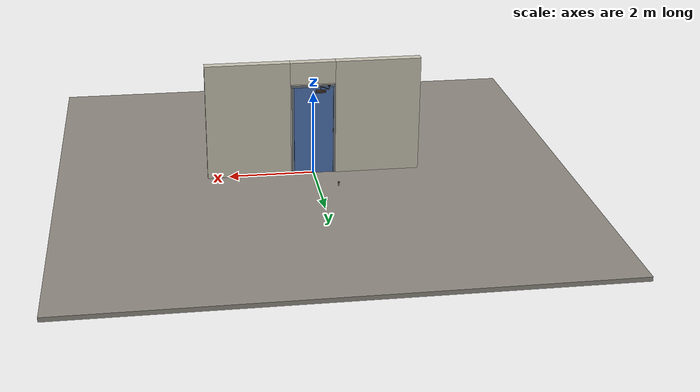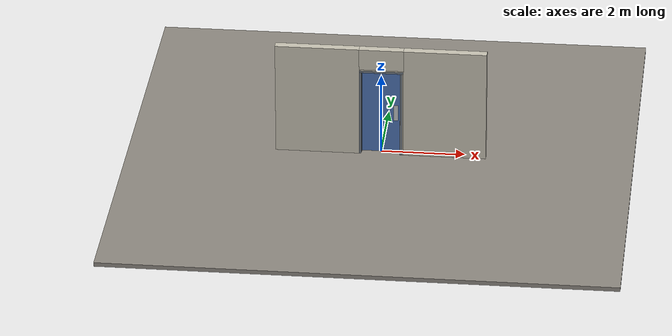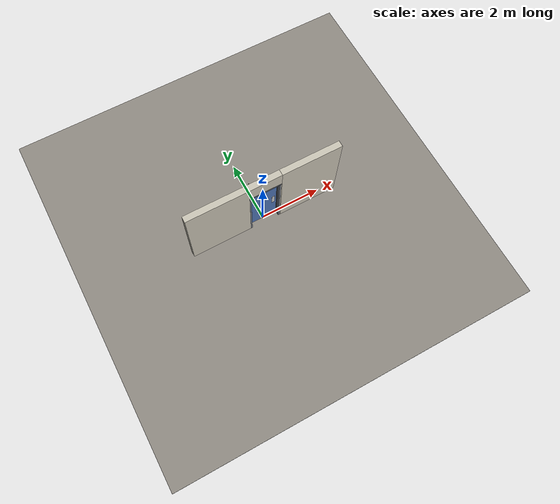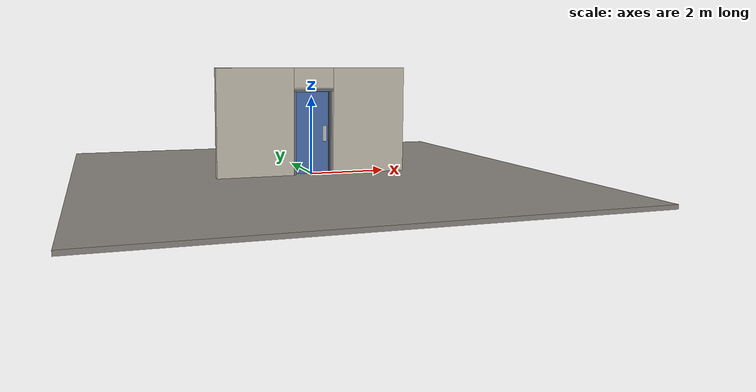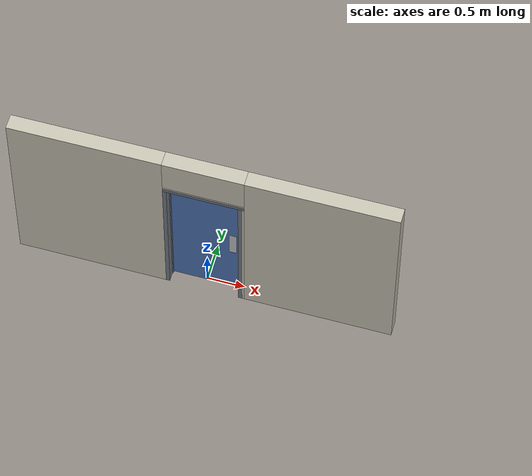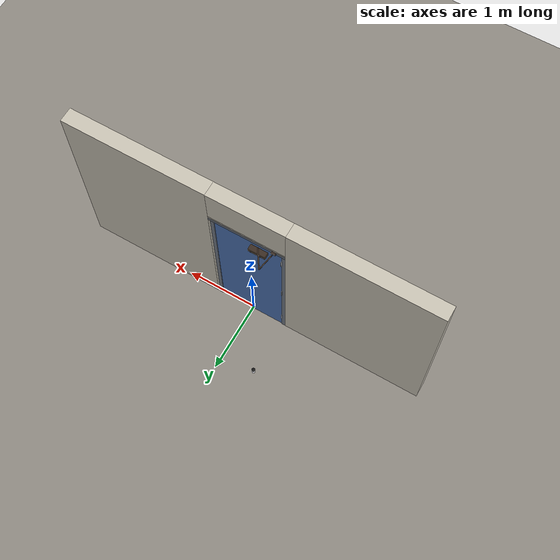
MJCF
<?xml version="1.0" ?>
<mujoco model="db0245_swing_single_full">
  <compiler angle="radian" meshdir="../../hardware" texturedir="../../textures" autolimits="true" inertiafromgeom="false"/>
  <option timestep="0.002" integrator="implicitfast" cone="elliptic" impratio="10" noslip_iterations="3">
    <flag multiccd="enable"/>
  </option>
  <size memory="16M"/>
  <default>
    <geom condim="4" solref="0.005 1" solimp="0.95 0.99 0.001"/>
    <joint solreflimit="0.005 1" solimplimit="0.95 0.99 0.001"/>
    <tendon solreflimit="0.005 1"/>
    <equality solref="0.002 1"/>
  </default>
  <visual>
    <headlight ambient="0.4 0.4 0.4" diffuse="0.7 0.7 0.7" specular="0.2 0.2 0.2"/>
    <quality shadowsize="4096"/>
    <map znear="0.01" zfar="60"/>
  </visual>
  <asset>
    <mesh name="closer_body_b226fdb10b" file="closer_body_b226fdb10b.obj"/>
    <mesh name="hinge_e22b26c0c1" file="hinge_e22b26c0c1.obj"/>
    <mesh name="hinge_jamb_e1d088f8dc" file="hinge_jamb_e1d088f8dc.obj"/>
    <material name="mat_floor" rgba="0.55 0.53 0.5 1" specular="0.2" shininess="0.15" reflectance="0"/>
    <material name="mat_wall" rgba="0.78 0.76 0.7 1" specular="0.2" shininess="0.1" reflectance="0"/>
    <material name="mat_leaf" rgba="0.3 0.45 0.7 1" specular="0.23" shininess="0.43" reflectance="0.02"/>
    <material name="mat_hinge" rgba="0.65 0.66 0.68 1" specular="0.74" shininess="0.5" reflectance="0.36"/>
    <material name="mat_op_stainless" rgba="0.75 0.76 0.77 1" specular="0.8" shininess="0.65" reflectance="0.4"/>
    <material name="mat_frame" rgba="0.45 0.48 0.52 1" specular="0.32" shininess="0.6" reflectance="0.08"/>
    <material name="mat_seal" rgba="0.1 0.1 0.1 1" specular="0.2" shininess="0.1" reflectance="0"/>
    <material name="mat_closer" rgba="0.22 0.17 0.13 1" specular="0.8" shininess="0.6" reflectance="0.4"/>
    <material name="mat_bumper_stop" rgba="0.08 0.08 0.08 1" specular="0.2" shininess="0.1" reflectance="0"/>
    <material name="mat_stop_base" rgba="0.9 0.9 0.92 1" specular="0.8" shininess="0.9" reflectance="0.4"/>
    <texture name="skybox" type="skybox" builtin="gradient" rgb1="0.6 0.7 0.85" rgb2="0.9 0.92 0.95" width="256" height="256"/>
  </asset>
  <worldbody>
    <light name="sun" pos="1.5 -2.5 4" dir="-0.3 0.5 -0.8" directional="true" diffuse="0.8 0.8 0.8" specular="0.3 0.3 0.3" castshadow="true"/>
    <light name="fill" pos="-1.5 2.5 3" dir="0.3 -0.5 -0.7" directional="true" diffuse="0.35 0.35 0.4" castshadow="false"/>
    <camera name="robot_view" pos="0 -2.708813 1.812087" xyaxes="1 0 0 0 0.26963 0.962964" fovy="52"/>
    <camera name="far_view" pos="0 2.566812 1.812087" xyaxes="-1 0 0 0 -0.26963 0.962964" fovy="52"/>
    <camera name="iso" pos="2.004737 -2.286763 2.234138" xyaxes="0.741536 0.670913 0 -0.242917 0.268487 0.932151" fovy="46"/>
    <camera name="detail_handle" pos="0.5335 -0.871 1.32" xyaxes="0.97561 0.219512 0 -0.070934 0.315262 0.94635" fovy="38"/>
    <geom name="floor" type="box" size="6 6 0.05" pos="0 0 -0.05" material="mat_floor" group="0" contype="1" conaffinity="1" friction="0.8 0.005 0.0001" density="2400"/>
    <geom name="wall_left" type="box" size="0.99475 0.1 1.3735" pos="-1.50525 -0.071 1.3735" material="mat_wall" group="0" contype="1" conaffinity="1" friction="0.6 0.005 0.0001" density="800"/>
    <geom name="wall_right" type="box" size="0.97975 0.1 1.3735" pos="1.52025 -0.071 1.3735" material="mat_wall" group="0" contype="1" conaffinity="1" friction="0.6 0.005 0.0001" density="800"/>
    <geom name="wall_header" type="box" size="0.5255 0.1 0.26" pos="0.015 -0.071 2.487" material="mat_wall" group="0" contype="1" conaffinity="1" friction="0.6 0.005 0.0001" density="800"/>
    <geom name="hinge_0_jamb" type="mesh" mesh="hinge_jamb_e1d088f8dc" pos="-0.4575 0.029 0.259" quat="0 1 0 0" material="mat_hinge" group="1" contype="0" conaffinity="0" density="7850"/>
    <geom name="hinge_1_jamb" type="mesh" mesh="hinge_jamb_e1d088f8dc" pos="-0.4575 0.029 1.076" quat="0 1 0 0" material="mat_hinge" group="1" contype="0" conaffinity="0" density="7850"/>
    <geom name="hinge_2_jamb" type="mesh" mesh="hinge_jamb_e1d088f8dc" pos="-0.4575 0.029 1.963" quat="0 1 0 0" material="mat_hinge" group="1" contype="0" conaffinity="0" density="7850"/>
    <geom name="jamb_hinge" type="box" size="0.025 0.1 1.0735" pos="-0.4855 -0.071 1.0735" material="mat_frame" group="0" contype="1" conaffinity="1" friction="0.6 0.005 0.0001" density="300"/>
    <geom name="jamb_strike" type="box" size="0.025 0.1 1.0735" pos="0.4855 -0.071 1.0735" material="mat_frame" group="0" contype="1" conaffinity="1" friction="0.6 0.005 0.0001" density="300"/>
    <geom name="stud_strike" type="box" size="0.015 0.1 1.0735" pos="0.5255 -0.071 1.0735" material="mat_wall" group="0" contype="1" conaffinity="1" friction="0.6 0.005 0.0001" density="500"/>
    <geom name="jamb_head" type="box" size="0.5255 0.1 0.025" pos="0.015 -0.071 2.172" material="mat_frame" group="0" contype="1" conaffinity="1" friction="0.6 0.005 0.0001" density="300"/>
    <geom name="head_stud" type="box" size="0.5255 0.1 0.015" pos="0.015 -0.071 2.212" material="mat_wall" group="0" contype="1" conaffinity="1" friction="0.6 0.005 0.0001" density="500"/>
    <geom name="stop_hinge" type="box" size="0.0055 0.016 1.0735" pos="-0.455 -0.0385 1.0735" material="mat_frame" group="0" contype="1" conaffinity="1" friction="0.6 0.005 0.0001" density="300"/>
    <geom name="stop_strike" type="box" size="0.0055 0.016 1.0735" pos="0.455 -0.0385 1.0735" material="mat_frame" group="0" contype="1" conaffinity="1" friction="0.6 0.005 0.0001" density="300"/>
    <geom name="stop_head" type="box" size="0.4605 0.016 0.0055" pos="0 -0.0385 2.1415" material="mat_frame" group="0" contype="1" conaffinity="1" friction="0.6 0.005 0.0001" density="300"/>
    <geom name="seal_hinge" type="box" size="0.004 0.004 1.0735" pos="-0.4575 -0.026 1.0735" material="mat_seal" group="1" contype="0" conaffinity="0" density="1100"/>
    <geom name="seal_strike" type="box" size="0.004 0.004 1.0735" pos="0.4575 -0.026 1.0735" material="mat_seal" group="1" contype="0" conaffinity="0" density="1100"/>
    <geom name="seal_head" type="box" size="0.4405 0.004 0.008" pos="0 -0.026 2.135" material="mat_seal" group="1" contype="0" conaffinity="0" density="1100"/>
    <geom name="closer_bracket" type="box" size="0.03 0.012 0.014" pos="-0.3605 0.041 2.177" material="mat_closer" group="1" contype="0" conaffinity="0" density="2700"/>
    <geom name="door_stop_base" type="cylinder" size="0.022 0.003" pos="-0.4735 0.8059 0.003" material="mat_stop_base" group="0" contype="1" conaffinity="1" friction="0.6 0.005 0.0001" density="7850"/>
    <geom name="door_stop_post" type="cylinder" size="0.012 0.0245" pos="-0.4735 0.8059 0.0305" material="mat_stop_base" group="0" contype="1" conaffinity="1" friction="0.6 0.005 0.0001" density="7850"/>
    <geom name="door_stop_bumper" type="cylinder" size="0.022 0.02" pos="-0.4735 0.8059 0.075" material="mat_bumper_stop" group="0" contype="1" conaffinity="1" friction="0.6 0.005 0.0001" density="1100"/>
    <site name="approach_point" pos="0 -1.5 0" quat="1 0 0 0" size="0.05" rgba="0.2 0.9 0.2 0.5" group="4"/>
    <site name="goal_point" pos="0 1.5 0" quat="1 0 0 0" size="0.05" rgba="0.2 0.9 0.2 0.5" group="4"/>
    <site name="door_plane_center" pos="0 0 1.0735" quat="1 0 0 0" size="0.02" rgba="0.2 0.9 0.2 0.5" group="4"/>
    <body name="leaf" pos="-0.4605 0 0">
      <inertial pos="0.428587 0.01092 1.247775" mass="40.245131" quat="-0.475852 0.494542 0.514548 0.514037" diaginertia="2.5699656 18.161010386 20.682868967"/>
      <joint name="leaf_hinge" type="hinge" axis="0 0 1" pos="0.003 0.029 0" limited="true" range="0 1.570796" solreflimit="0.02 1" damping="10.268966" frictionloss="2.759759" stiffness="11.796564" springref="-1.815783" armature="0.02"/>
      <geom name="leaf_slab" type="box" size="0.457 0.022 1.067" pos="0.46 0 1.076" material="mat_leaf" group="0" contype="1" conaffinity="1" friction="0.4 0.005 0.0001" density="1"/>
      <geom name="hinge_0" type="mesh" mesh="hinge_e22b26c0c1" pos="0.003 0.029 0.259" quat="0 1 0 0" material="mat_hinge" group="1" contype="0" conaffinity="0" density="7850"/>
      <geom name="hinge_1" type="mesh" mesh="hinge_e22b26c0c1" pos="0.003 0.029 1.076" quat="0 1 0 0" material="mat_hinge" group="1" contype="0" conaffinity="0" density="7850"/>
      <geom name="hinge_2" type="mesh" mesh="hinge_e22b26c0c1" pos="0.003 0.029 1.963" quat="0 1 0 0" material="mat_hinge" group="1" contype="0" conaffinity="0" density="7850"/>
      <geom name="leaf_push_plate_n" type="box" size="0.05 0.0008 0.2" pos="0.812 -0.0228 1.04" material="mat_op_stainless" group="1" contype="0" conaffinity="0" density="7900"/>
      <geom name="closer_body" type="mesh" mesh="closer_body_b226fdb10b" pos="0.3 0.022 2.054" quat="-0.707107 0.707107 0 0" material="mat_closer" group="1" contype="0" conaffinity="0" density="2000"/>
      <geom name="closer_body_col" type="box" size="0.12 0.04 0.03" pos="0.3 0.062 2.054" material="mat_closer" group="3" contype="1" conaffinity="1" rgba="0.8 0.3 0.3 0.25" friction="0.6 0.005 0.0001" density="2000"/>
      <geom name="closer_pinion_shaft" type="cylinder" size="0.008 0.0615" pos="0.3 0.064 2.1155" material="mat_closer" group="1" contype="0" conaffinity="0" density="2700"/>
      <site name="leaf_push_plate_push_n" pos="0.812 -0.022 1.04" quat="1 0 0 0" size="0.012" rgba="0.2 0.9 0.2 0.5" group="4"/>
      <site name="leaf_edge_mid" pos="0.917 0 1.067" quat="1 0 0 0" size="0.02" rgba="0.2 0.9 0.2 0.5" group="4"/>
      <body name="closer_arm_main" pos="0.3 0.064 2.177" quat="0.472212 0 0 0.881485">
        <inertial pos="0.14 0 0" mass="0.12096" quat="1 0 0 0" diaginertia="0.000003588 0.00079128 0.000792852"/>
        <joint name="closer_pinion" type="hinge" axis="0 0 1" limited="false" damping="0.01" armature="0.002"/>
        <geom name="closer_arm_main_geom" type="box" size="0.14 0.008 0.005" pos="0.14 0 0" material="mat_closer" group="1" contype="0" conaffinity="0" density="2700"/>
        <body name="closer_arm_fore" pos="0.28 0 0" quat="-0.371222 0 0 -0.928544">
          <inertial pos="0.128088 0 0" mass="0.076531" quat="1 0 0 0" diaginertia="0.000001771 0.000437665 0.000438201"/>
          <joint name="closer_elbow" type="hinge" axis="0 0 1" limited="false" damping="0.01" armature="0.002"/>
          <geom name="closer_arm_fore_geom" type="box" size="0.1125 0.007 0.004" pos="0.1125 0 0" material="mat_closer" group="1" contype="0" conaffinity="0" density="2700"/>
          <geom name="closer_fore_neck" type="box" size="0.0175 0.003 0.003" pos="0.2425 0 0" material="mat_closer" group="1" contype="0" conaffinity="0" density="2700"/>
          <geom name="closer_fore_pivot" type="cylinder" size="0.005 0.012" pos="0.26 0 0" material="mat_closer" group="1" contype="0" conaffinity="0" density="2700"/>
        </body>
      </body>
    </body>
  </worldbody>
  <equality>
    <connect name="closer_arm_connect" body1="closer_arm_fore" body2="world" anchor="0.26 0 0" active="true"/>
  </equality>
  <contact>
    <exclude body1="closer_arm_main" body2="leaf"/>
    <exclude body1="closer_arm_fore" body2="leaf"/>
    <exclude body1="closer_arm_main" body2="closer_arm_fore"/>
  </contact>
  <sensor>
    <jointpos name="leaf_hinge_pos" joint="leaf_hinge"/>
    <jointvel name="leaf_hinge_vel" joint="leaf_hinge"/>
  </sensor>
</mujoco>
